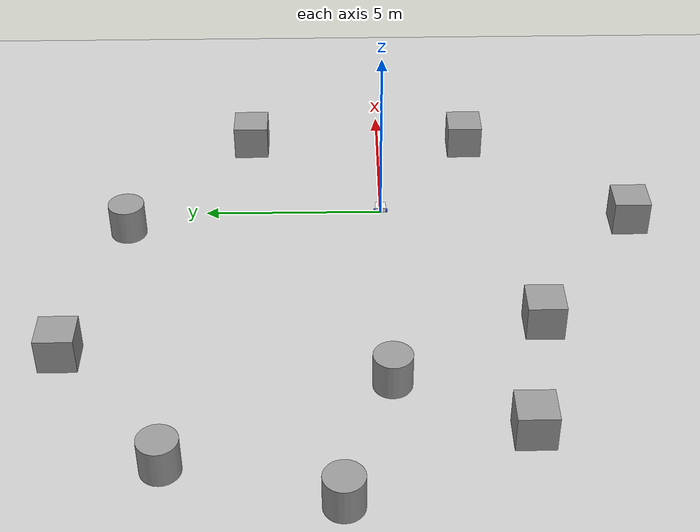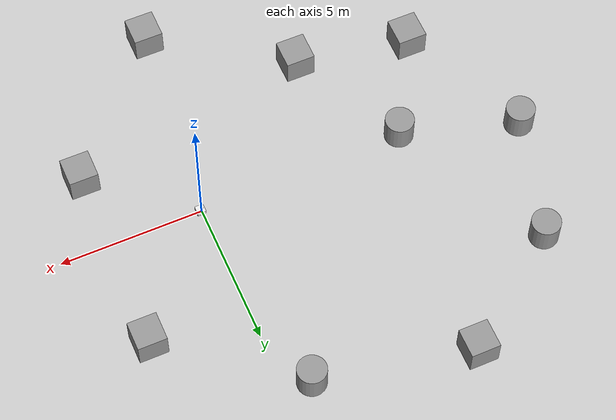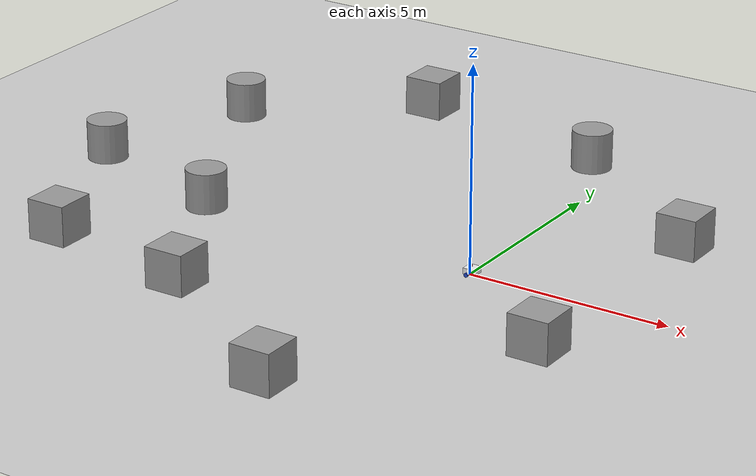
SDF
<sdf version="1.7">
 <world name="default">
  <light name="sun" type="directional">
   <pose>0 0 10 0 -0 0</pose>
   <diffuse>0.8 0.8 0.8 1</diffuse>
   <specular>0.2 0.2 0.2 1</specular>
   <attenuation>
    <range>1000</range>
    <constant>0.9</constant>
    <linear>0.01</linear>
    <quadratic>0.001</quadratic>
   </attenuation>
   <direction>-0.5 0.1 -0.9</direction>
   <spot><inner_angle>0</inner_angle><outer_angle>0</outer_angle><falloff>0</falloff></spot>
  </light>
  <model name="ground_plane">
   <static>1</static>
   <link name="link">
    <collision name="collision">
     <geometry><plane><normal>0 0 1</normal><size>100 100</size></plane></geometry>
     <surface>
      <contact><collide_bitmask>65535</collide_bitmask></contact>
      <friction><ode><mu>100</mu><mu2>50</mu2></ode></friction>
     </surface>
    </collision>
    <visual name="visual">
     <cast_shadows>0</cast_shadows>
     <geometry><plane><normal>0 0 1</normal><size>100 100</size></plane></geometry>
     <material>
      <script><uri>file://media/materials/scripts/gazebo.material</uri><name>Gazebo/Grey</name></script>
     </material>
    </visual>
   </link>
  </model>
  <gravity>0 0 -9.8</gravity>
  <magnetic_field>6e-06 2.3e-05 -4.2e-05</magnetic_field>
  <atmosphere type="adiabatic"/>
  <physics type="ode">
   <max_step_size>0.001</max_step_size>
   <real_time_factor>1</real_time_factor>
   <real_time_update_rate>1000</real_time_update_rate>
  </physics>
  <scene><ambient>0.4 0.4 0.4 1</ambient><background>0.7 0.7 0.7 1</background><shadows>1</shadows></scene>
  <spherical_coordinates>
   <surface_model>EARTH_WGS84</surface_model>
   <latitude_deg>0</latitude_deg>
   <longitude_deg>0</longitude_deg>
   <elevation>0</elevation>
   <heading_deg>0</heading_deg>
  </spherical_coordinates>
  <model name="my_bot">
   <link name="base_link">
    <inertial>
     <pose>0.055714 0 0.078571 0 -0 0</pose>
     <mass>0.7</mass>
     <inertia>
      <ixx>0.0064169</ixx>
      <ixy>0</ixy>
      <ixz>0.00118929</ixz>
      <iyy>0.00745405</iyy>
      <iyz>0</iyz>
      <izz>0.00876214</izz>
     </inertia>
    </inertial>
    <collision name="base_link_fixed_joint_lump__chassis_collision">
     <pose>0.05 0 0.075 0 -0 0</pose>
     <geometry><box><size>0.3 0.3 0.15</size></box></geometry>
    </collision>
    <collision name="base_link_fixed_joint_lump__caster_wheel_collision_1">
     <pose>0.14 0 0 0 -0 0</pose>
     <geometry><sphere><radius>0.05</radius></sphere></geometry>
     <surface><friction><ode><mu>0.001</mu><mu2>0.001</mu2></ode></friction></surface>
    </collision>
    <collision name="base_link_fixed_joint_lump__laser_frame_collision_2">
     <pose>0 0 0.175 0 -0 0</pose>
     <geometry><cylinder><length>0.04</length><radius>0.05</radius></cylinder></geometry>
    </collision>
    <visual name="base_link_fixed_joint_lump__chassis_visual">
     <pose>0.05 0 0.075 0 -0 0</pose>
     <geometry><box><size>0.3 0.3 0.15</size></box></geometry>
     <material>
      <script><name>Gazebo/White</name><uri>file://media/materials/scripts/gazebo.material</uri></script>
     </material>
    </visual>
    <visual name="base_link_fixed_joint_lump__caster_wheel_visual_1">
     <pose>0.14 0 0 0 -0 0</pose>
     <geometry><sphere><radius>0.05</radius></sphere></geometry>
     <material>
      <script><name>Gazebo/Black</name><uri>file://media/materials/scripts/gazebo.material</uri></script>
     </material>
    </visual>
    <visual name="base_link_fixed_joint_lump__laser_frame_visual_2">
     <pose>0 0 0.175 0 -0 0</pose>
     <geometry><cylinder><length>0.04</length><radius>0.05</radius></cylinder></geometry>
     <material>
      <script><name>Gazebo/Red</name><uri>file://media/materials/scripts/gazebo.material</uri></script>
     </material>
    </visual>
    <sensor name="laser" type="ray">
     <visualize>1</visualize>
     <update_rate>10</update_rate>
     <ray>
      <scan>
       <horizontal>
        <samples>360</samples>
        <min_angle>-3.14</min_angle>
        <max_angle>3.14</max_angle>
        <resolution>1</resolution>
       </horizontal>
       <vertical><samples>1</samples><min_angle>0</min_angle><max_angle>0</max_angle></vertical>
      </scan>
      <range><min>0.3</min><max>12</max></range>
     </ray>
     <plugin name="laser_controller" filename="libgazebo_ros_ray_sensor.so">
      <ros><argument>~/out:=scan</argument></ros>
      <output_type>sensor_msgs/LaserScan</output_type>
      <frame_name>laser_frame</frame_name>
     </plugin>
     <pose>0 0 0.175 0 -0 0</pose>
    </sensor>
   </link>
   <joint name="left_wheel_joint" type="revolute">
    <pose relative_to="base_link">0 0.175 0 -1.5708 0 0</pose>
    <parent>base_link</parent>
    <child>left_wheel</child>
    <axis>
     <xyz>0 0 1</xyz>
     <limit><lower>-1e+16</lower><upper>1e+16</upper></limit>
     <dynamics><spring_reference>0</spring_reference><spring_stiffness>0</spring_stiffness></dynamics>
    </axis>
   </joint>
   <link name="left_wheel">
    <pose relative_to="left_wheel_joint">0 0 0 0 -0 0</pose>
    <inertial>
     <mass>0.1</mass>
     <inertia>
      <ixx>7.58333e-05</ixx>
      <ixy>0</ixy>
      <ixz>0</ixz>
      <iyy>7.58333e-05</iyy>
      <iyz>0</iyz>
      <izz>0.000125</izz>
     </inertia>
    </inertial>
    <collision name="left_wheel_collision">
     <geometry><cylinder><length>0.04</length><radius>0.05</radius></cylinder></geometry>
    </collision>
    <visual name="left_wheel_visual">
     <geometry><cylinder><length>0.04</length><radius>0.05</radius></cylinder></geometry>
     <material>
      <script><name>Gazebo/Blue</name><uri>file://media/materials/scripts/gazebo.material</uri></script>
     </material>
    </visual>
   </link>
   <joint name="right_wheel_joint" type="revolute">
    <pose relative_to="base_link">0 -0.175 0 1.5708 -0 0</pose>
    <parent>base_link</parent>
    <child>right_wheel</child>
    <axis>
     <xyz>0 0 -1</xyz>
     <limit><lower>-1e+16</lower><upper>1e+16</upper></limit>
     <dynamics><spring_reference>0</spring_reference><spring_stiffness>0</spring_stiffness></dynamics>
    </axis>
   </joint>
   <link name="right_wheel">
    <pose relative_to="right_wheel_joint">0 0 0 0 -0 0</pose>
    <inertial>
     <mass>0.1</mass>
     <inertia>
      <ixx>7.58333e-05</ixx>
      <ixy>0</ixy>
      <ixz>0</ixz>
      <iyy>7.58333e-05</iyy>
      <iyz>0</iyz>
      <izz>0.000125</izz>
     </inertia>
    </inertial>
    <collision name="right_wheel_collision">
     <geometry><cylinder><length>0.04</length><radius>0.05</radius></cylinder></geometry>
    </collision>
    <visual name="right_wheel_visual">
     <geometry><cylinder><length>0.04</length><radius>0.05</radius></cylinder></geometry>
     <material>
      <script><name>Gazebo/Blue</name><uri>file://media/materials/scripts/gazebo.material</uri></script>
     </material>
    </visual>
   </link>
   <static>0</static>
   <plugin name="diff_drive" filename="libgazebo_ros_diff_drive.so">
    <left_joint>left_wheel_joint</left_joint>
    <right_joint>right_wheel_joint</right_joint>
    <wheel_separation>0.35</wheel_separation>
    <wheel_diameter>0.1</wheel_diameter>
    <max_wheel_torque>200</max_wheel_torque>
    <max_wheel_acceleration>10.0</max_wheel_acceleration>
    <odometry_frame>odom</odometry_frame>
    <robot_base_frame>base_link</robot_base_frame>
    <publish_odom>1</publish_odom>
    <publish_odom_tf>1</publish_odom_tf>
    <publish_wheel_tf>1</publish_wheel_tf>
   </plugin>
   <pose>0.001424 1.3e-05 0.05 0 1.2e-05 1.2e-05</pose>
  </model>
  <model name="unit_box">
   <pose>-6.1647 8.24735 0.499995 1e-05 -0 0</pose>
   <link name="link">
    <inertial>
     <mass>1</mass>
     <inertia>
      <ixx>0.166667</ixx>
      <ixy>0</ixy>
      <ixz>0</ixz>
      <iyy>0.166667</iyy>
      <iyz>0</iyz>
      <izz>0.166667</izz>
     </inertia>
    </inertial>
    <collision name="collision"><geometry><box><size>1 1 1</size></box></geometry></collision>
    <visual name="visual">
     <geometry><box><size>1 1 1</size></box></geometry>
     <material>
      <script><name>Gazebo/Grey</name><uri>file://media/materials/scripts/gazebo.material</uri></script>
     </material>
    </visual>
   </link>
  </model>
  <model name="unit_cylinder">
   <pose>-0.872071 7.12324 0.499998 3e-06 -3e-06 0</pose>
   <link name="link">
    <inertial>
     <mass>1</mass>
     <inertia><ixx>0.145833</ixx><ixy>0</ixy><ixz>0</ixz><iyy>0.145833</iyy><iyz>0</iyz><izz>0.125</izz></inertia>
    </inertial>
    <collision name="collision">
     <geometry><cylinder><radius>0.5</radius><length>1</length></cylinder></geometry>
    </collision>
    <visual name="visual">
     <geometry><cylinder><radius>0.5</radius><length>1</length></cylinder></geometry>
     <material>
      <script><name>Gazebo/Grey</name><uri>file://media/materials/scripts/gazebo.material</uri></script>
     </material>
    </visual>
   </link>
  </model>
  <model name="unit_cylinder_0">
   <pose>-11.1896 1.13839 0.499992 -3e-06 3e-06 0</pose>
   <link name="link">
    <inertial>
     <mass>1</mass>
     <inertia><ixx>0.145833</ixx><ixy>0</ixy><ixz>0</ixz><iyy>0.145833</iyy><iyz>0</iyz><izz>0.125</izz></inertia>
    </inertial>
    <collision name="collision">
     <geometry><cylinder><radius>0.5</radius><length>1</length></cylinder></geometry>
    </collision>
    <visual name="visual">
     <geometry><cylinder><radius>0.5</radius><length>1</length></cylinder></geometry>
     <material>
      <script><name>Gazebo/Grey</name><uri>file://media/materials/scripts/gazebo.material</uri></script>
     </material>
    </visual>
   </link>
  </model>
  <model name="unit_cylinder_1">
   <pose>-7.25745 -0.087261 0.499998 3e-06 -4e-06 0</pose>
   <link name="link">
    <inertial>
     <mass>1</mass>
     <inertia><ixx>0.145833</ixx><ixy>0</ixy><ixz>0</ixz><iyy>0.145833</iyy><iyz>0</iyz><izz>0.125</izz></inertia>
    </inertial>
    <collision name="collision">
     <geometry><cylinder><radius>0.5</radius><length>1</length></cylinder></geometry>
    </collision>
    <visual name="visual">
     <geometry><cylinder><radius>0.5</radius><length>1</length></cylinder></geometry>
     <material>
      <script><name>Gazebo/Grey</name><uri>file://media/materials/scripts/gazebo.material</uri></script>
     </material>
    </visual>
   </link>
  </model>
  <model name="unit_box_0">
   <pose>-5.1432 -4.05959 0.499995 -1e-05 -0 -0</pose>
   <link name="link">
    <inertial>
     <mass>1</mass>
     <inertia>
      <ixx>0.166667</ixx>
      <ixy>0</ixy>
      <ixz>0</ixz>
      <iyy>0.166667</iyy>
      <iyz>0</iyz>
      <izz>0.166667</izz>
     </inertia>
    </inertial>
    <collision name="collision"><geometry><box><size>1 1 1</size></box></geometry></collision>
    <visual name="visual">
     <geometry><box><size>1 1 1</size></box></geometry>
     <material>
      <script><name>Gazebo/Grey</name><uri>file://media/materials/scripts/gazebo.material</uri></script>
     </material>
    </visual>
   </link>
  </model>
  <model name="unit_cylinder_2">
   <pose>-10.0074 5.35572 0.499992 -3e-06 -4e-06 -0</pose>
   <link name="link">
    <inertial>
     <mass>1</mass>
     <inertia><ixx>0.145833</ixx><ixy>0</ixy><ixz>0</ixz><iyy>0.145833</iyy><iyz>0</iyz><izz>0.125</izz></inertia>
    </inertial>
    <collision name="collision">
     <geometry><cylinder><radius>0.5</radius><length>1</length></cylinder></geometry>
    </collision>
    <visual name="visual">
     <geometry><cylinder><radius>0.5</radius><length>1</length></cylinder></geometry>
     <material>
      <script><name>Gazebo/Grey</name><uri>file://media/materials/scripts/gazebo.material</uri></script>
     </material>
    </visual>
   </link>
  </model>
  <model name="unit_box_1">
   <pose>3.38848 3.83288 0.499995 -1e-05 -0 -0</pose>
   <link name="link">
    <inertial>
     <mass>1</mass>
     <inertia>
      <ixx>0.166667</ixx>
      <ixy>0</ixy>
      <ixz>0</ixz>
      <iyy>0.166667</iyy>
      <iyz>0</iyz>
      <izz>0.166667</izz>
     </inertia>
    </inertial>
    <collision name="collision"><geometry><box><size>1 1 1</size></box></geometry></collision>
    <visual name="visual">
     <geometry><box><size>1 1 1</size></box></geometry>
     <material>
      <script><name>Gazebo/Grey</name><uri>file://media/materials/scripts/gazebo.material</uri></script>
     </material>
    </visual>
   </link>
  </model>
  <model name="unit_box_2">
   <pose>-9.04669 -3.3569 0.499995 0 1e-05 0</pose>
   <link name="link">
    <inertial>
     <mass>1</mass>
     <inertia>
      <ixx>0.166667</ixx>
      <ixy>0</ixy>
      <ixz>0</ixz>
      <iyy>0.166667</iyy>
      <iyz>0</iyz>
      <izz>0.166667</izz>
     </inertia>
    </inertial>
    <collision name="collision"><geometry><box><size>1 1 1</size></box></geometry></collision>
    <visual name="visual">
     <geometry><box><size>1 1 1</size></box></geometry>
     <material>
      <script><name>Gazebo/Grey</name><uri>file://media/materials/scripts/gazebo.material</uri></script>
     </material>
    </visual>
   </link>
  </model>
  <model name="unit_box_3">
   <pose>-0.69862 -7.00912 0.499995 -1e-05 -0 0</pose>
   <link name="link">
    <inertial>
     <mass>1</mass>
     <inertia>
      <ixx>0.166667</ixx>
      <ixy>0</ixy>
      <ixz>0</ixz>
      <iyy>0.166667</iyy>
      <iyz>0</iyz>
      <izz>0.166667</izz>
     </inertia>
    </inertial>
    <collision name="collision"><geometry><box><size>1 1 1</size></box></geometry></collision>
    <visual name="visual">
     <geometry><box><size>1 1 1</size></box></geometry>
     <material>
      <script><name>Gazebo/Grey</name><uri>file://media/materials/scripts/gazebo.material</uri></script>
     </material>
    </visual>
   </link>
  </model>
  <model name="unit_box_4">
   <pose>3.29705 -2.63076 0.5 0 -0 0</pose>
   <link name="link">
    <inertial>
     <mass>1</mass>
     <inertia>
      <ixx>0.166667</ixx>
      <ixy>0</ixy>
      <ixz>0</ixz>
      <iyy>0.166667</iyy>
      <iyz>0</iyz>
      <izz>0.166667</izz>
     </inertia>
    </inertial>
    <collision name="collision"><geometry><box><size>1 1 1</size></box></geometry></collision>
    <visual name="visual">
     <geometry><box><size>1 1 1</size></box></geometry>
     <material>
      <script><name>Gazebo/Grey</name><uri>file://media/materials/scripts/gazebo.material</uri></script>
     </material>
    </visual>
   </link>
  </model>
 </world>
</sdf>
